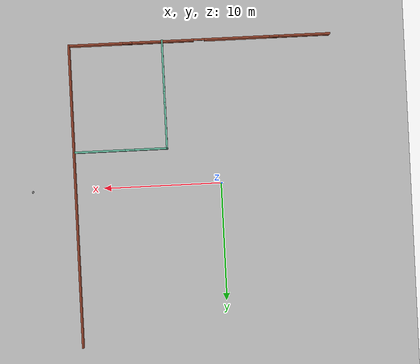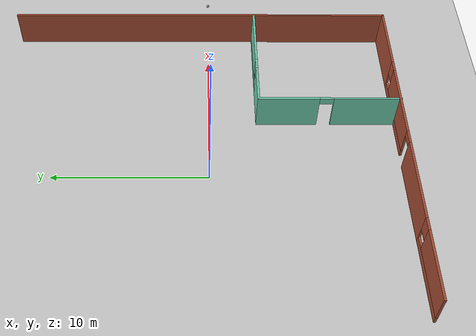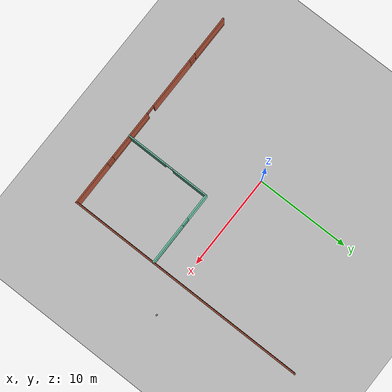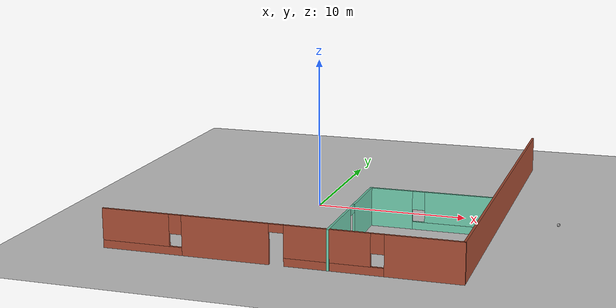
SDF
<sdf version="1.6">
 <world name="default">
  <model name="ground_plane">
   <static>1</static>
   <link name="link">
    <collision name="collision">
     <geometry><plane><normal>0 0 1</normal><size>100 100</size></plane></geometry>
     <surface>
      <contact><collide_bitmask>65535</collide_bitmask></contact>
      <friction><ode><mu>100</mu><mu2>50</mu2></ode></friction>
     </surface>
    </collision>
    <visual name="visual">
     <cast_shadows>0</cast_shadows>
     <geometry><plane><normal>0 0 1</normal><size>100 100</size></plane></geometry>
     <material>
      <script><uri>file://media/materials/scripts/gazebo.material</uri><name>Gazebo/Grey</name></script>
     </material>
    </visual>
   </link>
  </model>
  <model name="Building">
   <link name="Wall_16">
    <pose>3.13852 -8.31175 0 0 -0 1.5708</pose>
    <visual name="Wall_16_Visual_0">
     <pose>-2.44368 0 1.25 0 -0 0</pose>
     <geometry><box><size>4.36265 0.15 2.5</size></box></geometry>
     <material>
      <script><uri>file://media/materials/scripts/gazebo.material</uri><name>Gazebo/Grey</name></script>
      <ambient>0.435294 0.796078 0.67451 1</ambient>
      <shader type="pixel"/>
      <diffuse>0.7 0.7 0.7 1</diffuse>
      <specular>0.01 0.01 0.01 1</specular>
      <emissive>0 0 0 1</emissive>
     </material>
     <meta><layer>0</layer></meta>
    </visual>
    <visual name="Wall_16_Visual_1">
     <pose>2.63132 0 1.25 0 -0 0</pose>
     <geometry><box><size>3.98735 0.15 2.5</size></box></geometry>
     <material>
      <script><uri>file://media/materials/scripts/gazebo.material</uri><name>Gazebo/Grey</name></script>
      <ambient>0.435294 0.796078 0.67451 1</ambient>
      <shader type="pixel"/>
      <diffuse>0.7 0.7 0.7 1</diffuse>
      <specular>0.01 0.01 0.01 1</specular>
      <emissive>0 0 0 1</emissive>
     </material>
     <meta><layer>0</layer></meta>
    </visual>
    <visual name="Wall_16_Visual_2">
     <pose>0.187646 0 2.25 0 -0 0</pose>
     <geometry><box><size>0.9 0.15 0.5</size></box></geometry>
     <material>
      <script><uri>file://media/materials/scripts/gazebo.material</uri><name>Gazebo/Grey</name></script>
      <ambient>0.435294 0.796078 0.67451 1</ambient>
      <shader type="pixel"/>
      <diffuse>0.7 0.7 0.7 1</diffuse>
      <specular>0.01 0.01 0.01 1</specular>
      <emissive>0 0 0 1</emissive>
     </material>
     <meta><layer>0</layer></meta>
    </visual>
    <collision name="Wall_16_Collision_0">
     <pose>-2.44368 0 1.25 0 -0 0</pose>
     <geometry><box><size>4.36265 0.15 2.5</size></box></geometry>
     <surface>
      <friction>
       <ode><mu>1</mu><mu2>1</mu2><fdir1>0 0 0</fdir1><slip1>0</slip1><slip2>0</slip2></ode>
       <torsional>
        <coefficient>1</coefficient>
        <patch_radius>0</patch_radius>
        <surface_radius>0</surface_radius>
        <use_patch_radius>1</use_patch_radius>
        <ode><slip>0</slip></ode>
       </torsional>
      </friction>
      <bounce><restitution_coefficient>0</restitution_coefficient><threshold>1e+06</threshold></bounce>
      <contact>
       <collide_without_contact>0</collide_without_contact>
       <collide_without_contact_bitmask>1</collide_without_contact_bitmask>
       <collide_bitmask>1</collide_bitmask>
       <ode>
        <soft_cfm>0</soft_cfm>
        <soft_erp>0.2</soft_erp>
        <kp>1e+13</kp>
        <kd>1</kd>
        <max_vel>0.01</max_vel>
        <min_depth>0</min_depth>
       </ode>
       <bullet>
        <split_impulse>1</split_impulse>
        <split_impulse_penetration_threshold>-0.01</split_impulse_penetration_threshold>
        <soft_cfm>0</soft_cfm>
        <soft_erp>0.2</soft_erp>
        <kp>1e+13</kp>
        <kd>1</kd>
       </bullet>
      </contact>
     </surface>
    </collision>
    <collision name="Wall_16_Collision_1">
     <pose>2.63132 0 1.25 0 -0 0</pose>
     <geometry><box><size>3.98735 0.15 2.5</size></box></geometry>
     <surface>
      <friction>
       <ode><mu>1</mu><mu2>1</mu2><fdir1>0 0 0</fdir1><slip1>0</slip1><slip2>0</slip2></ode>
       <torsional>
        <coefficient>1</coefficient>
        <patch_radius>0</patch_radius>
        <surface_radius>0</surface_radius>
        <use_patch_radius>1</use_patch_radius>
        <ode><slip>0</slip></ode>
       </torsional>
      </friction>
      <bounce><restitution_coefficient>0</restitution_coefficient><threshold>1e+06</threshold></bounce>
      <contact>
       <collide_without_contact>0</collide_without_contact>
       <collide_without_contact_bitmask>1</collide_without_contact_bitmask>
       <collide_bitmask>1</collide_bitmask>
       <ode>
        <soft_cfm>0</soft_cfm>
        <soft_erp>0.2</soft_erp>
        <kp>1e+13</kp>
        <kd>1</kd>
        <max_vel>0.01</max_vel>
        <min_depth>0</min_depth>
       </ode>
       <bullet>
        <split_impulse>1</split_impulse>
        <split_impulse_penetration_threshold>-0.01</split_impulse_penetration_threshold>
        <soft_cfm>0</soft_cfm>
        <soft_erp>0.2</soft_erp>
        <kp>1e+13</kp>
        <kd>1</kd>
       </bullet>
      </contact>
     </surface>
    </collision>
    <collision name="Wall_16_Collision_2">
     <pose>0.187646 0 2.25 0 -0 0</pose>
     <geometry><box><size>0.9 0.15 0.5</size></box></geometry>
     <surface>
      <friction>
       <ode><mu>1</mu><mu2>1</mu2><fdir1>0 0 0</fdir1><slip1>0</slip1><slip2>0</slip2></ode>
       <torsional>
        <coefficient>1</coefficient>
        <patch_radius>0</patch_radius>
        <surface_radius>0</surface_radius>
        <use_patch_radius>1</use_patch_radius>
        <ode><slip>0</slip></ode>
       </torsional>
      </friction>
      <bounce><restitution_coefficient>0</restitution_coefficient><threshold>1e+06</threshold></bounce>
      <contact>
       <collide_without_contact>0</collide_without_contact>
       <collide_without_contact_bitmask>1</collide_without_contact_bitmask>
       <collide_bitmask>1</collide_bitmask>
       <ode>
        <soft_cfm>0</soft_cfm>
        <soft_erp>0.2</soft_erp>
        <kp>1e+13</kp>
        <kd>1</kd>
        <max_vel>0.01</max_vel>
        <min_depth>0</min_depth>
       </ode>
       <bullet>
        <split_impulse>1</split_impulse>
        <split_impulse_penetration_threshold>-0.01</split_impulse_penetration_threshold>
        <soft_cfm>0</soft_cfm>
        <soft_erp>0.2</soft_erp>
        <kp>1e+13</kp>
        <kd>1</kd>
       </bullet>
      </contact>
     </surface>
    </collision>
   </link>
   <link name="Wall_17">
    <pose>7.06352 -3.76175 0 0 -0 0</pose>
    <visual name="Wall_17_Visual_0">
     <pose>-2.59354 0 1.25 0 -0 0</pose>
     <geometry><box><size>2.81292 0.15 2.5</size></box></geometry>
     <material>
      <script><uri>file://media/materials/scripts/gazebo.material</uri><name>Gazebo/Grey</name></script>
      <ambient>0.435294 0.796078 0.67451 1</ambient>
      <shader type="pixel"/>
      <diffuse>0.7 0.7 0.7 1</diffuse>
      <specular>0.01 0.01 0.01 1</specular>
      <emissive>0 0 0 1</emissive>
     </material>
     <meta><layer>0</layer></meta>
    </visual>
    <visual name="Wall_17_Visual_1">
     <pose>1.40646 0 0.25 0 -0 0</pose>
     <geometry><box><size>5.18708 0.15 0.5</size></box></geometry>
     <material>
      <script><uri>file://media/materials/scripts/gazebo.material</uri><name>Gazebo/Grey</name></script>
      <ambient>0.435294 0.796078 0.67451 1</ambient>
      <shader type="pixel"/>
      <diffuse>0.7 0.7 0.7 1</diffuse>
      <specular>0.01 0.01 0.01 1</specular>
      <emissive>0 0 0 1</emissive>
     </material>
     <meta><layer>0</layer></meta>
    </visual>
    <visual name="Wall_17_Visual_2">
     <pose>1.80646 0 1.5 0 -0 0</pose>
     <geometry><box><size>4.38708 0.15 2</size></box></geometry>
     <material>
      <script><uri>file://media/materials/scripts/gazebo.material</uri><name>Gazebo/Grey</name></script>
      <ambient>0.435294 0.796078 0.67451 1</ambient>
      <shader type="pixel"/>
      <diffuse>0.7 0.7 0.7 1</diffuse>
      <specular>0.01 0.01 0.01 1</specular>
      <emissive>0 0 0 1</emissive>
     </material>
     <meta><layer>0</layer></meta>
    </visual>
    <visual name="Wall_17_Visual_3">
     <pose>-0.787078 0 1.9 0 -0 0</pose>
     <geometry><box><size>0.8 0.15 1.2</size></box></geometry>
     <material>
      <script><uri>file://media/materials/scripts/gazebo.material</uri><name>Gazebo/Grey</name></script>
      <ambient>0.435294 0.796078 0.67451 1</ambient>
      <shader type="pixel"/>
      <diffuse>0.7 0.7 0.7 1</diffuse>
      <specular>0.01 0.01 0.01 1</specular>
      <emissive>0 0 0 1</emissive>
     </material>
     <meta><layer>0</layer></meta>
    </visual>
    <collision name="Wall_17_Collision_0">
     <pose>-2.59354 0 1.25 0 -0 0</pose>
     <geometry><box><size>2.81292 0.15 2.5</size></box></geometry>
     <surface>
      <friction>
       <ode><mu>1</mu><mu2>1</mu2><fdir1>0 0 0</fdir1><slip1>0</slip1><slip2>0</slip2></ode>
       <torsional>
        <coefficient>1</coefficient>
        <patch_radius>0</patch_radius>
        <surface_radius>0</surface_radius>
        <use_patch_radius>1</use_patch_radius>
        <ode><slip>0</slip></ode>
       </torsional>
      </friction>
      <bounce><restitution_coefficient>0</restitution_coefficient><threshold>1e+06</threshold></bounce>
      <contact>
       <collide_without_contact>0</collide_without_contact>
       <collide_without_contact_bitmask>1</collide_without_contact_bitmask>
       <collide_bitmask>1</collide_bitmask>
       <ode>
        <soft_cfm>0</soft_cfm>
        <soft_erp>0.2</soft_erp>
        <kp>1e+13</kp>
        <kd>1</kd>
        <max_vel>0.01</max_vel>
        <min_depth>0</min_depth>
       </ode>
       <bullet>
        <split_impulse>1</split_impulse>
        <split_impulse_penetration_threshold>-0.01</split_impulse_penetration_threshold>
        <soft_cfm>0</soft_cfm>
        <soft_erp>0.2</soft_erp>
        <kp>1e+13</kp>
        <kd>1</kd>
       </bullet>
      </contact>
     </surface>
    </collision>
    <collision name="Wall_17_Collision_1">
     <pose>1.40646 0 0.25 0 -0 0</pose>
     <geometry><box><size>5.18708 0.15 0.5</size></box></geometry>
     <surface>
      <friction>
       <ode><mu>1</mu><mu2>1</mu2><fdir1>0 0 0</fdir1><slip1>0</slip1><slip2>0</slip2></ode>
       <torsional>
        <coefficient>1</coefficient>
        <patch_radius>0</patch_radius>
        <surface_radius>0</surface_radius>
        <use_patch_radius>1</use_patch_radius>
        <ode><slip>0</slip></ode>
       </torsional>
      </friction>
      <bounce><restitution_coefficient>0</restitution_coefficient><threshold>1e+06</threshold></bounce>
      <contact>
       <collide_without_contact>0</collide_without_contact>
       <collide_without_contact_bitmask>1</collide_without_contact_bitmask>
       <collide_bitmask>1</collide_bitmask>
       <ode>
        <soft_cfm>0</soft_cfm>
        <soft_erp>0.2</soft_erp>
        <kp>1e+13</kp>
        <kd>1</kd>
        <max_vel>0.01</max_vel>
        <min_depth>0</min_depth>
       </ode>
       <bullet>
        <split_impulse>1</split_impulse>
        <split_impulse_penetration_threshold>-0.01</split_impulse_penetration_threshold>
        <soft_cfm>0</soft_cfm>
        <soft_erp>0.2</soft_erp>
        <kp>1e+13</kp>
        <kd>1</kd>
       </bullet>
      </contact>
     </surface>
    </collision>
    <collision name="Wall_17_Collision_3">
     <pose>-0.787078 0 1.9 0 -0 0</pose>
     <geometry><box><size>0.8 0.15 1.2</size></box></geometry>
     <surface>
      <friction>
       <ode><mu>1</mu><mu2>1</mu2><fdir1>0 0 0</fdir1><slip1>0</slip1><slip2>0</slip2></ode>
       <torsional>
        <coefficient>1</coefficient>
        <patch_radius>0</patch_radius>
        <surface_radius>0</surface_radius>
        <use_patch_radius>1</use_patch_radius>
        <ode><slip>0</slip></ode>
       </torsional>
      </friction>
      <bounce><restitution_coefficient>0</restitution_coefficient><threshold>1e+06</threshold></bounce>
      <contact>
       <collide_without_contact>0</collide_without_contact>
       <collide_without_contact_bitmask>1</collide_without_contact_bitmask>
       <collide_bitmask>1</collide_bitmask>
       <ode>
        <soft_cfm>0</soft_cfm>
        <soft_erp>0.2</soft_erp>
        <kp>1e+13</kp>
        <kd>1</kd>
        <max_vel>0.01</max_vel>
        <min_depth>0</min_depth>
       </ode>
       <bullet>
        <split_impulse>1</split_impulse>
        <split_impulse_penetration_threshold>-0.01</split_impulse_penetration_threshold>
        <soft_cfm>0</soft_cfm>
        <soft_erp>0.2</soft_erp>
        <kp>1e+13</kp>
        <kd>1</kd>
       </bullet>
      </contact>
     </surface>
    </collision>
    <collision name="Wall_17_Collision_2">
     <pose>1.80646 0 1.5 0 -0 0</pose>
     <geometry><box><size>4.38708 0.15 2</size></box></geometry>
     <surface>
      <friction>
       <ode><mu>1</mu><mu2>1</mu2><fdir1>0 0 0</fdir1><slip1>0</slip1><slip2>0</slip2></ode>
       <torsional>
        <coefficient>1</coefficient>
        <patch_radius>0</patch_radius>
        <surface_radius>0</surface_radius>
        <use_patch_radius>1</use_patch_radius>
        <ode><slip>0</slip></ode>
       </torsional>
      </friction>
      <bounce><restitution_coefficient>0</restitution_coefficient><threshold>1e+06</threshold></bounce>
      <contact>
       <collide_without_contact>0</collide_without_contact>
       <collide_without_contact_bitmask>1</collide_without_contact_bitmask>
       <collide_bitmask>1</collide_bitmask>
       <ode>
        <soft_cfm>0</soft_cfm>
        <soft_erp>0.2</soft_erp>
        <kp>1e+13</kp>
        <kd>1</kd>
        <max_vel>0.01</max_vel>
        <min_depth>0</min_depth>
       </ode>
       <bullet>
        <split_impulse>1</split_impulse>
        <split_impulse_penetration_threshold>-0.01</split_impulse_penetration_threshold>
        <soft_cfm>0</soft_cfm>
        <soft_erp>0.2</soft_erp>
        <kp>1e+13</kp>
        <kd>1</kd>
       </bullet>
      </contact>
     </surface>
    </collision>
   </link>
   <link name="Wall_4">
    <pose>11.05 -0.022461 0 0 0 -1.5708</pose>
    <visual name="Wall_4_Visual">
     <pose>0 0 1.25 0 -0 0</pose>
     <geometry><box><size>25.75 0.15 2.5</size></box></geometry>
     <material>
      <script><uri>file://media/materials/scripts/gazebo.material</uri><name>Gazebo/Bricks</name></script>
      <ambient>1 1 1 1</ambient>
      <shader type="pixel"/>
      <diffuse>1 1 1 1</diffuse>
      <specular>0.2 0.2 0.2 1</specular>
      <emissive>0 0 0 1</emissive>
     </material>
     <meta><layer>0</layer></meta>
    </visual>
    <collision name="Wall_4_Collision">
     <pose>0 0 1.25 0 -0 0</pose>
     <geometry><box><size>25.75 0.15 2.5</size></box></geometry>
     <surface>
      <friction>
       <ode><mu>1</mu><mu2>1</mu2><fdir1>0 0 0</fdir1><slip1>0</slip1><slip2>0</slip2></ode>
       <torsional>
        <coefficient>1</coefficient>
        <patch_radius>0</patch_radius>
        <surface_radius>0</surface_radius>
        <use_patch_radius>1</use_patch_radius>
        <ode><slip>0</slip></ode>
       </torsional>
      </friction>
      <bounce><restitution_coefficient>0</restitution_coefficient><threshold>1e+06</threshold></bounce>
      <contact>
       <collide_without_contact>0</collide_without_contact>
       <collide_without_contact_bitmask>1</collide_without_contact_bitmask>
       <collide_bitmask>1</collide_bitmask>
       <ode>
        <soft_cfm>0</soft_cfm>
        <soft_erp>0.2</soft_erp>
        <kp>1e+13</kp>
        <kd>1</kd>
        <max_vel>0.01</max_vel>
        <min_depth>0</min_depth>
       </ode>
       <bullet>
        <split_impulse>1</split_impulse>
        <split_impulse_penetration_threshold>-0.01</split_impulse_penetration_threshold>
        <soft_cfm>0</soft_cfm>
        <soft_erp>0.2</soft_erp>
        <kp>1e+13</kp>
        <kd>1</kd>
       </bullet>
      </contact>
     </surface>
    </collision>
   </link>
   <link name="Wall_5">
    <pose>0 -12.8225 0 0 -0 3.14159</pose>
    <visual name="Wall_5_Visual_0">
     <pose>-8.79588 0 1.25 0 -0 0</pose>
     <geometry><box><size>4.65824 0.15 2.5</size></box></geometry>
     <material>
      <script><uri>file://media/materials/scripts/gazebo.material</uri><name>Gazebo/Bricks</name></script>
      <ambient>1 1 1 1</ambient>
      <shader type="pixel"/>
      <diffuse>1 1 1 1</diffuse>
      <specular>0.2 0.2 0.2 1</specular>
      <emissive>0 0 0 1</emissive>
     </material>
     <meta><layer>0</layer></meta>
    </visual>
    <visual name="Wall_5_Visual_2">
     <pose>-3.45759 0 0.25 0 -0 0</pose>
     <geometry><box><size>6.01834 0.15 0.5</size></box></geometry>
     <material>
      <script><uri>file://media/materials/scripts/gazebo.material</uri><name>Gazebo/Bricks</name></script>
      <ambient>1 1 1 1</ambient>
      <shader type="pixel"/>
      <diffuse>1 1 1 1</diffuse>
      <specular>0.2 0.2 0.2 1</specular>
      <emissive>0 0 0 1</emissive>
     </material>
     <meta><layer>0</layer></meta>
    </visual>
    <visual name="Wall_5_Visual_1">
     <pose>3.20234 0 1.25 0 -0 0</pose>
     <geometry><box><size>5.50152 0.15 2.5</size></box></geometry>
     <material>
      <script><uri>file://media/materials/scripts/gazebo.material</uri><name>Gazebo/Bricks</name></script>
      <ambient>1 1 1 1</ambient>
      <shader type="pixel"/>
      <diffuse>1 1 1 1</diffuse>
      <specular>0.2 0.2 0.2 1</specular>
      <emissive>0 0 0 1</emissive>
     </material>
     <meta><layer>0</layer></meta>
    </visual>
    <visual name="Wall_5_Visual_3">
     <pose>8.53905 0 0.25 0 -0 0</pose>
     <geometry><box><size>5.1719 0.15 0.5</size></box></geometry>
     <material>
      <script><uri>file://media/materials/scripts/gazebo.material</uri><name>Gazebo/Bricks</name></script>
      <ambient>1 1 1 1</ambient>
      <shader type="pixel"/>
      <diffuse>1 1 1 1</diffuse>
      <specular>0.2 0.2 0.2 1</specular>
      <emissive>0 0 0 1</emissive>
     </material>
     <meta><layer>0</layer></meta>
    </visual>
    <visual name="Wall_5_Visual_4">
     <pose>-3.05759 0 1.5 0 -0 0</pose>
     <geometry><box><size>5.21834 0.15 2</size></box></geometry>
     <material>
      <script><uri>file://media/materials/scripts/gazebo.material</uri><name>Gazebo/Bricks</name></script>
      <ambient>1 1 1 1</ambient>
      <shader type="pixel"/>
      <diffuse>1 1 1 1</diffuse>
      <specular>0.2 0.2 0.2 1</specular>
      <emissive>0 0 0 1</emissive>
     </material>
     <meta><layer>0</layer></meta>
    </visual>
    <visual name="Wall_5_Visual_5">
     <pose>-3.05759 0 1.5 0 -0 0</pose>
     <geometry><box><size>5.21834 0.15 2</size></box></geometry>
     <material>
      <script><uri>file://media/materials/scripts/gazebo.material</uri><name>Gazebo/Bricks</name></script>
      <ambient>1 1 1 1</ambient>
      <shader type="pixel"/>
      <diffuse>1 1 1 1</diffuse>
      <specular>0.2 0.2 0.2 1</specular>
      <emissive>0 0 0 1</emissive>
     </material>
     <meta><layer>0</layer></meta>
    </visual>
    <visual name="Wall_5_Visual_6">
     <pose>8.93905 0 1.5 0 -0 0</pose>
     <geometry><box><size>4.3719 0.15 2</size></box></geometry>
     <material>
      <script><uri>file://media/materials/scripts/gazebo.material</uri><name>Gazebo/Bricks</name></script>
      <ambient>1 1 1 1</ambient>
      <shader type="pixel"/>
      <diffuse>1 1 1 1</diffuse>
      <specular>0.2 0.2 0.2 1</specular>
      <emissive>0 0 0 1</emissive>
     </material>
     <meta><layer>0</layer></meta>
    </visual>
    <visual name="Wall_5_Visual_7">
     <pose>-6.06676 0 1.9 0 -0 0</pose>
     <geometry><box><size>0.8 0.15 1.2</size></box></geometry>
     <material>
      <script><uri>file://media/materials/scripts/gazebo.material</uri><name>Gazebo/Bricks</name></script>
      <ambient>1 1 1 1</ambient>
      <shader type="pixel"/>
      <diffuse>1 1 1 1</diffuse>
      <specular>0.2 0.2 0.2 1</specular>
      <emissive>0 0 0 1</emissive>
     </material>
     <meta><layer>0</layer></meta>
    </visual>
    <visual name="Wall_5_Visual_8">
     <pose>6.3531 0 1.9 0 -0 0</pose>
     <geometry><box><size>0.8 0.15 1.2</size></box></geometry>
     <material>
      <script><uri>file://media/materials/scripts/gazebo.material</uri><name>Gazebo/Bricks</name></script>
      <ambient>1 1 1 1</ambient>
      <shader type="pixel"/>
      <diffuse>1 1 1 1</diffuse>
      <specular>0.2 0.2 0.2 1</specular>
      <emissive>0 0 0 1</emissive>
     </material>
     <meta><layer>0</layer></meta>
    </visual>
    <visual name="Wall_5_Visual_9">
     <pose>0.001579 0 2.25 0 -0 0</pose>
     <geometry><box><size>0.9 0.15 0.5</size></box></geometry>
     <material>
      <script><uri>file://media/materials/scripts/gazebo.material</uri><name>Gazebo/Bricks</name></script>
      <ambient>1 1 1 1</ambient>
      <shader type="pixel"/>
      <diffuse>1 1 1 1</diffuse>
      <specular>0.2 0.2 0.2 1</specular>
      <emissive>0 0 0 1</emissive>
     </material>
     <meta><layer>0</layer></meta>
    </visual>
    <visual name="Wall_5_Visual_10">
     <pose>0.001579 0 2.25 0 -0 0</pose>
     <geometry><box><size>0.9 0.15 0.5</size></box></geometry>
     <material>
      <script><uri>file://media/materials/scripts/gazebo.material</uri><name>Gazebo/Bricks</name></script>
      <ambient>1 1 1 1</ambient>
      <shader type="pixel"/>
      <diffuse>1 1 1 1</diffuse>
      <specular>0.2 0.2 0.2 1</specular>
      <emissive>0 0 0 1</emissive>
     </material>
     <meta><layer>0</layer></meta>
    </visual>
    <collision name="Wall_5_Collision_0">
     <pose>-8.79588 0 1.25 0 -0 0</pose>
     <geometry><box><size>4.65824 0.15 2.5</size></box></geometry>
     <surface>
      <friction>
       <ode><mu>1</mu><mu2>1</mu2><fdir1>0 0 0</fdir1><slip1>0</slip1><slip2>0</slip2></ode>
       <torsional>
        <coefficient>1</coefficient>
        <patch_radius>0</patch_radius>
        <surface_radius>0</surface_radius>
        <use_patch_radius>1</use_patch_radius>
        <ode><slip>0</slip></ode>
       </torsional>
      </friction>
      <bounce><restitution_coefficient>0</restitution_coefficient><threshold>1e+06</threshold></bounce>
      <contact>
       <collide_without_contact>0</collide_without_contact>
       <collide_without_contact_bitmask>1</collide_without_contact_bitmask>
       <collide_bitmask>1</collide_bitmask>
       <ode>
        <soft_cfm>0</soft_cfm>
        <soft_erp>0.2</soft_erp>
        <kp>1e+13</kp>
        <kd>1</kd>
        <max_vel>0.01</max_vel>
        <min_depth>0</min_depth>
       </ode>
       <bullet>
        <split_impulse>1</split_impulse>
        <split_impulse_penetration_threshold>-0.01</split_impulse_penetration_threshold>
        <soft_cfm>0</soft_cfm>
        <soft_erp>0.2</soft_erp>
        <kp>1e+13</kp>
        <kd>1</kd>
       </bullet>
      </contact>
     </surface>
    </collision>
    <collision name="Wall_5_Collision_3">
     <pose>8.53905 0 0.25 0 -0 0</pose>
     <geometry><box><size>5.1719 0.15 0.5</size></box></geometry>
     <surface>
      <friction>
       <ode><mu>1</mu><mu2>1</mu2><fdir1>0 0 0</fdir1><slip1>0</slip1><slip2>0</slip2></ode>
       <torsional>
        <coefficient>1</coefficient>
        <patch_radius>0</patch_radius>
        <surface_radius>0</surface_radius>
        <use_patch_radius>1</use_patch_radius>
        <ode><slip>0</slip></ode>
       </torsional>
      </friction>
      <bounce><restitution_coefficient>0</restitution_coefficient><threshold>1e+06</threshold></bounce>
      <contact>
       <collide_without_contact>0</collide_without_contact>
       <collide_without_contact_bitmask>1</collide_without_contact_bitmask>
       <collide_bitmask>1</collide_bitmask>
       <ode>
        <soft_cfm>0</soft_cfm>
        <soft_erp>0.2</soft_erp>
        <kp>1e+13</kp>
        <kd>1</kd>
        <max_vel>0.01</max_vel>
        <min_depth>0</min_depth>
       </ode>
       <bullet>
        <split_impulse>1</split_impulse>
        <split_impulse_penetration_threshold>-0.01</split_impulse_penetration_threshold>
        <soft_cfm>0</soft_cfm>
        <soft_erp>0.2</soft_erp>
        <kp>1e+13</kp>
        <kd>1</kd>
       </bullet>
      </contact>
     </surface>
    </collision>
    <collision name="Wall_5_Collision_2">
     <pose>-3.45759 0 0.25 0 -0 0</pose>
     <geometry><box><size>6.01834 0.15 0.5</size></box></geometry>
     <surface>
      <friction>
       <ode><mu>1</mu><mu2>1</mu2><fdir1>0 0 0</fdir1><slip1>0</slip1><slip2>0</slip2></ode>
       <torsional>
        <coefficient>1</coefficient>
        <patch_radius>0</patch_radius>
        <surface_radius>0</surface_radius>
        <use_patch_radius>1</use_patch_radius>
        <ode><slip>0</slip></ode>
       </torsional>
      </friction>
      <bounce><restitution_coefficient>0</restitution_coefficient><threshold>1e+06</threshold></bounce>
      <contact>
       <collide_without_contact>0</collide_without_contact>
       <collide_without_contact_bitmask>1</collide_without_contact_bitmask>
       <collide_bitmask>1</collide_bitmask>
       <ode>
        <soft_cfm>0</soft_cfm>
        <soft_erp>0.2</soft_erp>
        <kp>1e+13</kp>
        <kd>1</kd>
        <max_vel>0.01</max_vel>
        <min_depth>0</min_depth>
       </ode>
       <bullet>
        <split_impulse>1</split_impulse>
        <split_impulse_penetration_threshold>-0.01</split_impulse_penetration_threshold>
        <soft_cfm>0</soft_cfm>
        <soft_erp>0.2</soft_erp>
        <kp>1e+13</kp>
        <kd>1</kd>
       </bullet>
      </contact>
     </surface>
    </collision>
    <collision name="Wall_5_Collision_1">
     <pose>3.20234 0 1.25 0 -0 0</pose>
     <geometry><box><size>5.50152 0.15 2.5</size></box></geometry>
     <surface>
      <friction>
       <ode><mu>1</mu><mu2>1</mu2><fdir1>0 0 0</fdir1><slip1>0</slip1><slip2>0</slip2></ode>
       <torsional>
        <coefficient>1</coefficient>
        <patch_radius>0</patch_radius>
        <surface_radius>0</surface_radius>
        <use_patch_radius>1</use_patch_radius>
        <ode><slip>0</slip></ode>
       </torsional>
      </friction>
      <bounce><restitution_coefficient>0</restitution_coefficient><threshold>1e+06</threshold></bounce>
      <contact>
       <collide_without_contact>0</collide_without_contact>
       <collide_without_contact_bitmask>1</collide_without_contact_bitmask>
       <collide_bitmask>1</collide_bitmask>
       <ode>
        <soft_cfm>0</soft_cfm>
        <soft_erp>0.2</soft_erp>
        <kp>1e+13</kp>
        <kd>1</kd>
        <max_vel>0.01</max_vel>
        <min_depth>0</min_depth>
       </ode>
       <bullet>
        <split_impulse>1</split_impulse>
        <split_impulse_penetration_threshold>-0.01</split_impulse_penetration_threshold>
        <soft_cfm>0</soft_cfm>
        <soft_erp>0.2</soft_erp>
        <kp>1e+13</kp>
        <kd>1</kd>
       </bullet>
      </contact>
     </surface>
    </collision>
    <collision name="Wall_5_Collision_4">
     <pose>-3.05759 0 1.5 0 -0 0</pose>
     <geometry><box><size>5.21834 0.15 2</size></box></geometry>
     <surface>
      <friction>
       <ode><mu>1</mu><mu2>1</mu2><fdir1>0 0 0</fdir1><slip1>0</slip1><slip2>0</slip2></ode>
       <torsional>
        <coefficient>1</coefficient>
        <patch_radius>0</patch_radius>
        <surface_radius>0</surface_radius>
        <use_patch_radius>1</use_patch_radius>
        <ode><slip>0</slip></ode>
       </torsional>
      </friction>
      <bounce><restitution_coefficient>0</restitution_coefficient><threshold>1e+06</threshold></bounce>
      <contact>
       <collide_without_contact>0</collide_without_contact>
       <collide_without_contact_bitmask>1</collide_without_contact_bitmask>
       <collide_bitmask>1</collide_bitmask>
       <ode>
        <soft_cfm>0</soft_cfm>
        <soft_erp>0.2</soft_erp>
        <kp>1e+13</kp>
        <kd>1</kd>
        <max_vel>0.01</max_vel>
        <min_depth>0</min_depth>
       </ode>
       <bullet>
        <split_impulse>1</split_impulse>
        <split_impulse_penetration_threshold>-0.01</split_impulse_penetration_threshold>
        <soft_cfm>0</soft_cfm>
        <soft_erp>0.2</soft_erp>
        <kp>1e+13</kp>
        <kd>1</kd>
       </bullet>
      </contact>
     </surface>
    </collision>
    <collision name="Wall_5_Collision_5">
     <pose>-3.05759 0 1.5 0 -0 0</pose>
     <geometry><box><size>5.21834 0.15 2</size></box></geometry>
     <surface>
      <friction>
       <ode><mu>1</mu><mu2>1</mu2><fdir1>0 0 0</fdir1><slip1>0</slip1><slip2>0</slip2></ode>
       <torsional>
        <coefficient>1</coefficient>
        <patch_radius>0</patch_radius>
        <surface_radius>0</surface_radius>
        <use_patch_radius>1</use_patch_radius>
        <ode><slip>0</slip></ode>
       </torsional>
      </friction>
      <bounce><restitution_coefficient>0</restitution_coefficient><threshold>1e+06</threshold></bounce>
      <contact>
       <collide_without_contact>0</collide_without_contact>
       <collide_without_contact_bitmask>1</collide_without_contact_bitmask>
       <collide_bitmask>1</collide_bitmask>
       <ode>
        <soft_cfm>0</soft_cfm>
        <soft_erp>0.2</soft_erp>
        <kp>1e+13</kp>
        <kd>1</kd>
        <max_vel>0.01</max_vel>
        <min_depth>0</min_depth>
       </ode>
       <bullet>
        <split_impulse>1</split_impulse>
        <split_impulse_penetration_threshold>-0.01</split_impulse_penetration_threshold>
        <soft_cfm>0</soft_cfm>
        <soft_erp>0.2</soft_erp>
        <kp>1e+13</kp>
        <kd>1</kd>
       </bullet>
      </contact>
     </surface>
    </collision>
    <collision name="Wall_5_Collision_7">
     <pose>-6.06676 0 1.9 0 -0 0</pose>
     <geometry><box><size>0.8 0.15 1.2</size></box></geometry>
     <surface>
      <friction>
       <ode><mu>1</mu><mu2>1</mu2><fdir1>0 0 0</fdir1><slip1>0</slip1><slip2>0</slip2></ode>
       <torsional>
        <coefficient>1</coefficient>
        <patch_radius>0</patch_radius>
        <surface_radius>0</surface_radius>
        <use_patch_radius>1</use_patch_radius>
        <ode><slip>0</slip></ode>
       </torsional>
      </friction>
      <bounce><restitution_coefficient>0</restitution_coefficient><threshold>1e+06</threshold></bounce>
      <contact>
       <collide_without_contact>0</collide_without_contact>
       <collide_without_contact_bitmask>1</collide_without_contact_bitmask>
       <collide_bitmask>1</collide_bitmask>
       <ode>
        <soft_cfm>0</soft_cfm>
        <soft_erp>0.2</soft_erp>
        <kp>1e+13</kp>
        <kd>1</kd>
        <max_vel>0.01</max_vel>
        <min_depth>0</min_depth>
       </ode>
       <bullet>
        <split_impulse>1</split_impulse>
        <split_impulse_penetration_threshold>-0.01</split_impulse_penetration_threshold>
        <soft_cfm>0</soft_cfm>
        <soft_erp>0.2</soft_erp>
        <kp>1e+13</kp>
        <kd>1</kd>
       </bullet>
      </contact>
     </surface>
    </collision>
    <collision name="Wall_5_Collision_6">
     <pose>8.93905 0 1.5 0 -0 0</pose>
     <geometry><box><size>4.3719 0.15 2</size></box></geometry>
     <surface>
      <friction>
       <ode><mu>1</mu><mu2>1</mu2><fdir1>0 0 0</fdir1><slip1>0</slip1><slip2>0</slip2></ode>
       <torsional>
        <coefficient>1</coefficient>
        <patch_radius>0</patch_radius>
        <surface_radius>0</surface_radius>
        <use_patch_radius>1</use_patch_radius>
        <ode><slip>0</slip></ode>
       </torsional>
      </friction>
      <bounce><restitution_coefficient>0</restitution_coefficient><threshold>1e+06</threshold></bounce>
      <contact>
       <collide_without_contact>0</collide_without_contact>
       <collide_without_contact_bitmask>1</collide_without_contact_bitmask>
       <collide_bitmask>1</collide_bitmask>
       <ode>
        <soft_cfm>0</soft_cfm>
        <soft_erp>0.2</soft_erp>
        <kp>1e+13</kp>
        <kd>1</kd>
        <max_vel>0.01</max_vel>
        <min_depth>0</min_depth>
       </ode>
       <bullet>
        <split_impulse>1</split_impulse>
        <split_impulse_penetration_threshold>-0.01</split_impulse_penetration_threshold>
        <soft_cfm>0</soft_cfm>
        <soft_erp>0.2</soft_erp>
        <kp>1e+13</kp>
        <kd>1</kd>
       </bullet>
      </contact>
     </surface>
    </collision>
    <collision name="Wall_5_Collision_8">
     <pose>6.3531 0 1.9 0 -0 0</pose>
     <geometry><box><size>0.8 0.15 1.2</size></box></geometry>
     <surface>
      <friction>
       <ode><mu>1</mu><mu2>1</mu2><fdir1>0 0 0</fdir1><slip1>0</slip1><slip2>0</slip2></ode>
       <torsional>
        <coefficient>1</coefficient>
        <patch_radius>0</patch_radius>
        <surface_radius>0</surface_radius>
        <use_patch_radius>1</use_patch_radius>
        <ode><slip>0</slip></ode>
       </torsional>
      </friction>
      <bounce><restitution_coefficient>0</restitution_coefficient><threshold>1e+06</threshold></bounce>
      <contact>
       <collide_without_contact>0</collide_without_contact>
       <collide_without_contact_bitmask>1</collide_without_contact_bitmask>
       <collide_bitmask>1</collide_bitmask>
       <ode>
        <soft_cfm>0</soft_cfm>
        <soft_erp>0.2</soft_erp>
        <kp>1e+13</kp>
        <kd>1</kd>
        <max_vel>0.01</max_vel>
        <min_depth>0</min_depth>
       </ode>
       <bullet>
        <split_impulse>1</split_impulse>
        <split_impulse_penetration_threshold>-0.01</split_impulse_penetration_threshold>
        <soft_cfm>0</soft_cfm>
        <soft_erp>0.2</soft_erp>
        <kp>1e+13</kp>
        <kd>1</kd>
       </bullet>
      </contact>
     </surface>
    </collision>
    <collision name="Wall_5_Collision_9">
     <pose>0.001579 0 2.25 0 -0 0</pose>
     <geometry><box><size>0.9 0.15 0.5</size></box></geometry>
     <surface>
      <friction>
       <ode><mu>1</mu><mu2>1</mu2><fdir1>0 0 0</fdir1><slip1>0</slip1><slip2>0</slip2></ode>
       <torsional>
        <coefficient>1</coefficient>
        <patch_radius>0</patch_radius>
        <surface_radius>0</surface_radius>
        <use_patch_radius>1</use_patch_radius>
        <ode><slip>0</slip></ode>
       </torsional>
      </friction>
      <bounce><restitution_coefficient>0</restitution_coefficient><threshold>1e+06</threshold></bounce>
      <contact>
       <collide_without_contact>0</collide_without_contact>
       <collide_without_contact_bitmask>1</collide_without_contact_bitmask>
       <collide_bitmask>1</collide_bitmask>
       <ode>
        <soft_cfm>0</soft_cfm>
        <soft_erp>0.2</soft_erp>
        <kp>1e+13</kp>
        <kd>1</kd>
        <max_vel>0.01</max_vel>
        <min_depth>0</min_depth>
       </ode>
       <bullet>
        <split_impulse>1</split_impulse>
        <split_impulse_penetration_threshold>-0.01</split_impulse_penetration_threshold>
        <soft_cfm>0</soft_cfm>
        <soft_erp>0.2</soft_erp>
        <kp>1e+13</kp>
        <kd>1</kd>
       </bullet>
      </contact>
     </surface>
    </collision>
    <collision name="Wall_5_Collision_10">
     <pose>0.001579 0 2.25 0 -0 0</pose>
     <geometry><box><size>0.9 0.15 0.5</size></box></geometry>
     <surface>
      <friction>
       <ode><mu>1</mu><mu2>1</mu2><fdir1>0 0 0</fdir1><slip1>0</slip1><slip2>0</slip2></ode>
       <torsional>
        <coefficient>1</coefficient>
        <patch_radius>0</patch_radius>
        <surface_radius>0</surface_radius>
        <use_patch_radius>1</use_patch_radius>
        <ode><slip>0</slip></ode>
       </torsional>
      </friction>
      <bounce><restitution_coefficient>0</restitution_coefficient><threshold>1e+06</threshold></bounce>
      <contact>
       <collide_without_contact>0</collide_without_contact>
       <collide_without_contact_bitmask>1</collide_without_contact_bitmask>
       <collide_bitmask>1</collide_bitmask>
       <ode>
        <soft_cfm>0</soft_cfm>
        <soft_erp>0.2</soft_erp>
        <kp>1e+13</kp>
        <kd>1</kd>
        <max_vel>0.01</max_vel>
        <min_depth>0</min_depth>
       </ode>
       <bullet>
        <split_impulse>1</split_impulse>
        <split_impulse_penetration_threshold>-0.01</split_impulse_penetration_threshold>
        <soft_cfm>0</soft_cfm>
        <soft_erp>0.2</soft_erp>
        <kp>1e+13</kp>
        <kd>1</kd>
       </bullet>
      </contact>
     </surface>
    </collision>
   </link>
   <static>1</static>
   <pose>1.3463 0.605074 0 0 -0 0</pose>
  </model>
  <model name="my_ball_0">
   <link name="link_0">
    <inertial>
     <mass>1</mass>
     <inertia><ixx>0.1</ixx><ixy>0</ixy><ixz>0</ixz><iyy>0.1</iyy><iyz>0</iyz><izz>0.1</izz></inertia>
    </inertial>
    <visual name="visual">
     <geometry><sphere><radius>0.1</radius></sphere></geometry>
     <material>
      <lighting>1</lighting>
      <script><uri>file://media/materials/scripts/gazebo.material</uri><name>Gazebo/Grey</name></script>
      <ambient>1 1 1 1</ambient>
      <diffuse>1 1 1 1</diffuse>
      <specular>1 1 1 1</specular>
      <emissive>1 1 1 1</emissive>
      <shader type="vertex"><normal_map>__default__</normal_map></shader>
     </material>
    </visual>
    <collision name="collision">
     <geometry><sphere><radius>0.1</radius></sphere></geometry>
     <surface>
      <friction>
       <ode><mu>1</mu><mu2>1</mu2><fdir1>0 0 0</fdir1><slip1>0</slip1><slip2>0</slip2></ode>
       <torsional>
        <coefficient>1</coefficient>
        <patch_radius>0</patch_radius>
        <surface_radius>0</surface_radius>
        <use_patch_radius>1</use_patch_radius>
        <ode><slip>0</slip></ode>
       </torsional>
      </friction>
      <bounce><restitution_coefficient>0</restitution_coefficient><threshold>1e+06</threshold></bounce>
      <contact>
       <collide_without_contact>0</collide_without_contact>
       <collide_without_contact_bitmask>1</collide_without_contact_bitmask>
       <collide_bitmask>1</collide_bitmask>
       <ode>
        <soft_cfm>0</soft_cfm>
        <soft_erp>0.2</soft_erp>
        <kp>1e+13</kp>
        <kd>1</kd>
        <max_vel>0.01</max_vel>
        <min_depth>0</min_depth>
       </ode>
       <bullet>
        <split_impulse>1</split_impulse>
        <split_impulse_penetration_threshold>-0.01</split_impulse_penetration_threshold>
        <soft_cfm>0</soft_cfm>
        <soft_erp>0.2</soft_erp>
        <kp>1e+13</kp>
        <kd>1</kd>
       </bullet>
      </contact>
     </surface>
    </collision>
   </link>
   <static>0</static>
   <pose>16.0851 0.026659 0.1 0 -0 0</pose>
  </model>
 </world>
</sdf>
